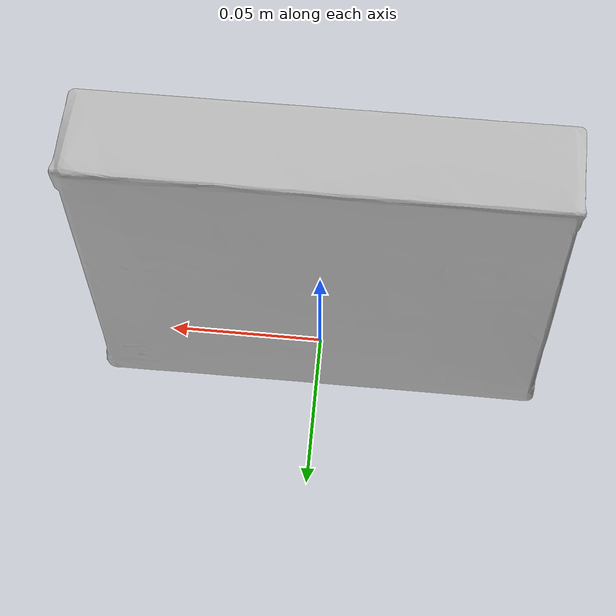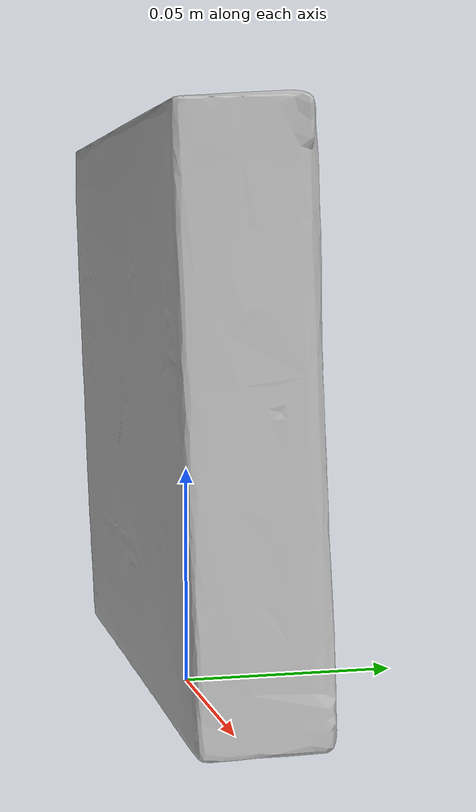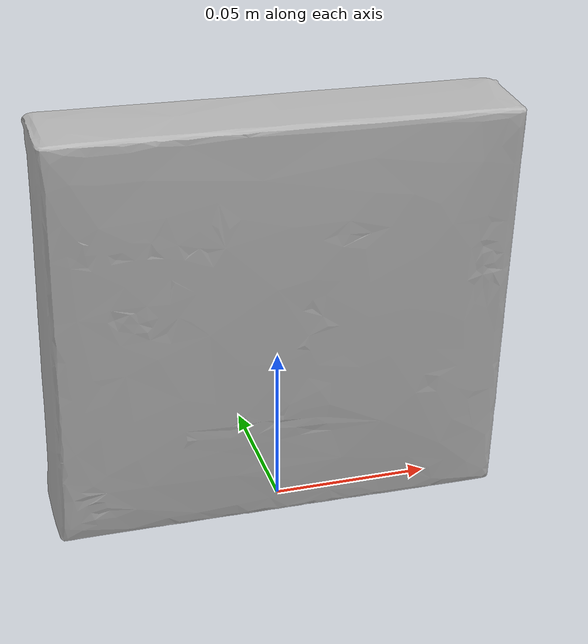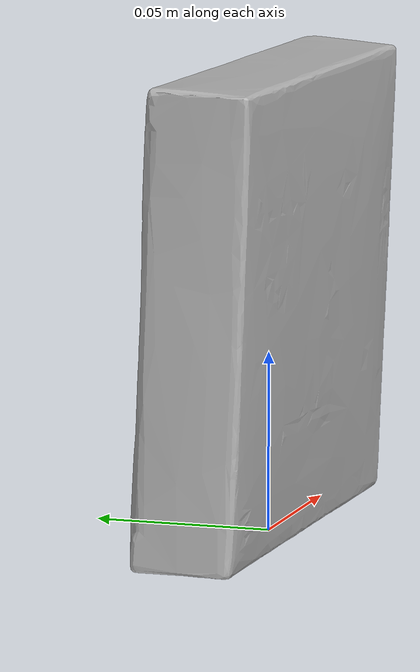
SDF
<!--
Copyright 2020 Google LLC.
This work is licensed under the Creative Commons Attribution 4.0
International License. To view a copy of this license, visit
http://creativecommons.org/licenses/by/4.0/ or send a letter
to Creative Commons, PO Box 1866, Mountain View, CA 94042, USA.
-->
<?xml version="1.0" ?>
<sdf version="1.6">
  <model name="Pokémon_Omega_Ruby_Alpha_Sapphire_Dual_Pack_Nintendo_3DS">
    <link name="link_0">
      <visual name="visual">
        <geometry>
          <mesh>
            <uri>meshes/model.obj</uri>
          </mesh>
        </geometry>
      </visual>
      <collision name="collision_0">
        <geometry>
          <mesh>
            <uri>meshes/model.obj</uri>
          </mesh>
        </geometry>
      </collision>
    </link>
  </model>
</sdf>
